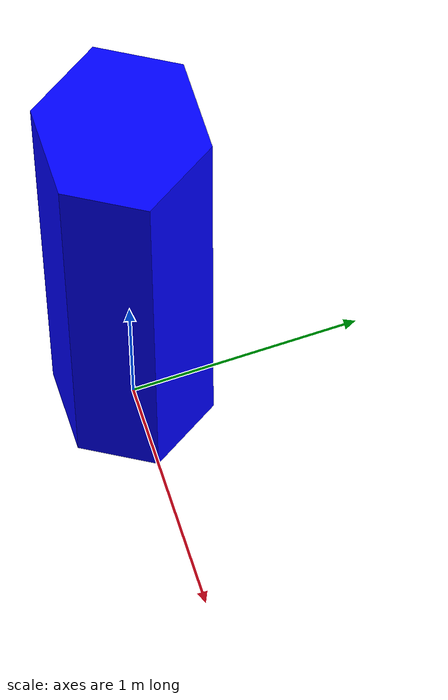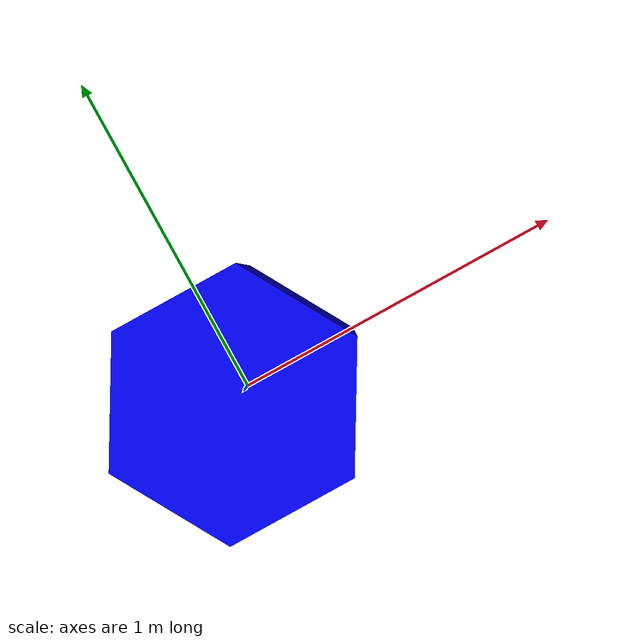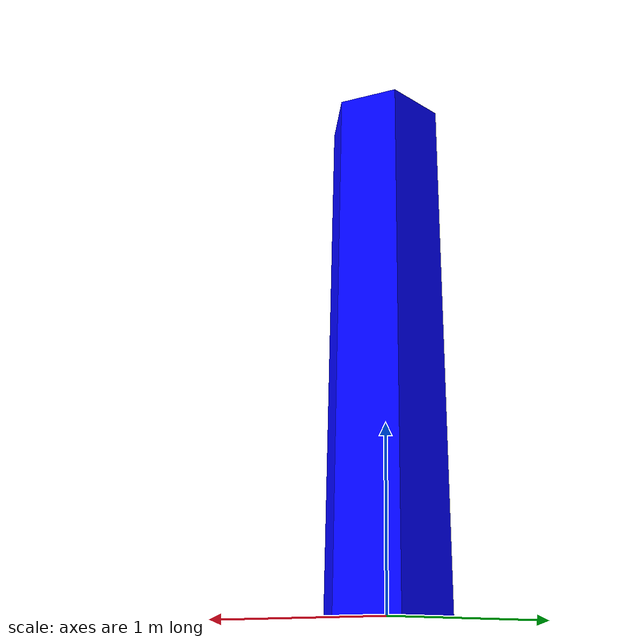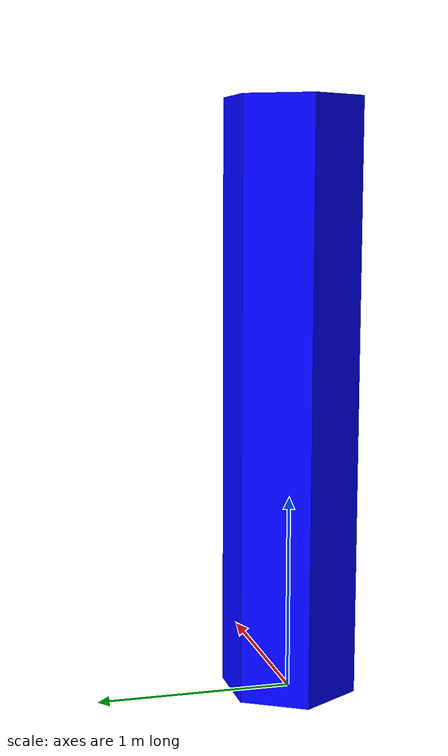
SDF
<?xml version="1.0" ?>
<sdf version="1.5">
  <model name="unknown_obst_1">
    <static>true</static>
    <link name="link">
      <pose>0 0 0 0 0 0</pose>
      <collision name="collision">
        <geometry>
            <mesh>
              <uri>
                model://unknown_obst_1/mesh/unknown_obst_high.stl
              </uri>
              <scale>
                0.001 0.001 0.001
              </scale>
            </mesh>
        </geometry>
      </collision>
      <visual name="visual">
        <cast_shadows>true</cast_shadows>
        <geometry>
            <mesh>
              <uri>
                model://unknown_obst_1/mesh/unknown_obst_high.stl
              </uri>
              <scale>
                0.001 0.001 0.001
              </scale>
            </mesh>
        </geometry>
        <material> <!-- color soft yellow -->
          <ambient>0 0 1 1</ambient>
          <diffuse>0 0 1 1</diffuse>
          <specular>0 0 0 0</specular>
          <emissive>0 0 0 1</emissive>
        </material>
      </visual>
    </link>
  </model>
</sdf>
